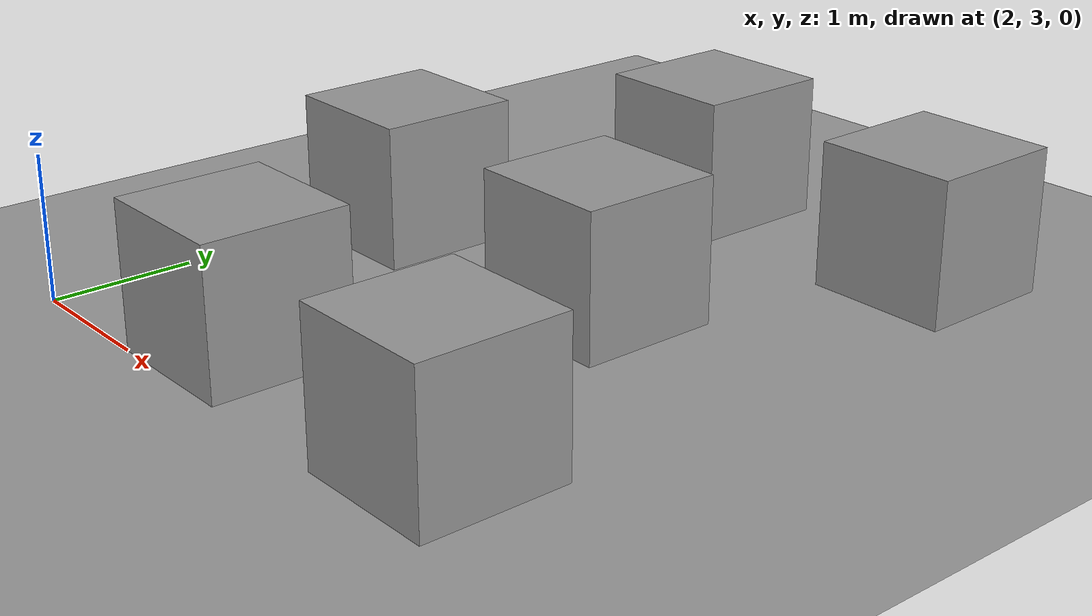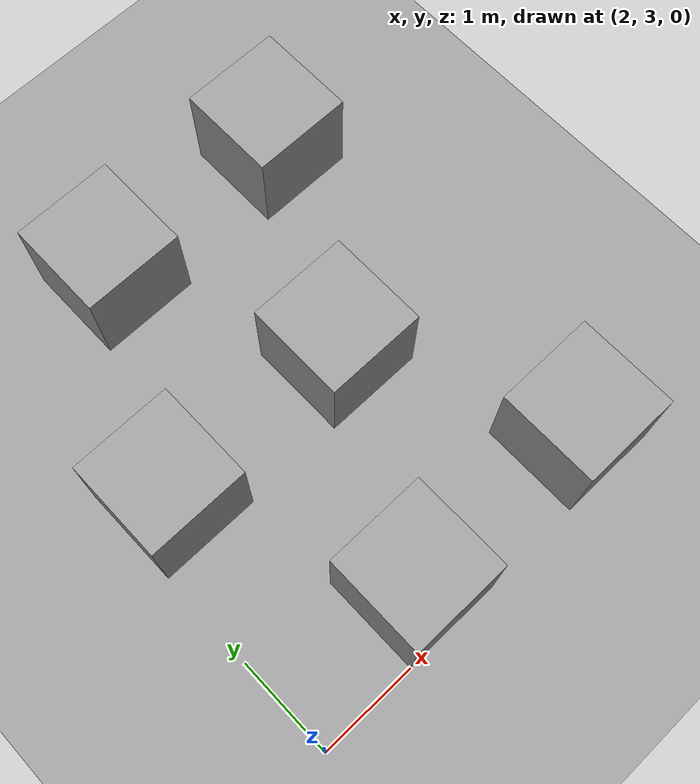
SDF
<sdf version="1.4">
 <world name="default">
  <model name="unit_box">
   <static>true</static>
   <pose>5.5 7.5 0.5 0 -0 0</pose>
   <link name="link">
    <inertial>
     <mass>1</mass>
     <inertia>
      <ixx>0.166667</ixx>
      <ixy>0</ixy>
      <ixz>0</ixz>
      <iyy>0.166667</iyy>
      <iyz>0</iyz>
      <izz>0.166667</izz>
     </inertia>
    </inertial>
    <collision name="collision"><geometry><box><size>1 1 1</size></box></geometry></collision>
    <visual name="visual">
     <geometry><box><size>1 1 1</size></box></geometry>
     <material>
      <script><name>Gazebo/Grey</name><uri>file://media/materials/scripts/gazebo.material</uri></script>
     </material>
    </visual>
   </link>
  </model>
  <model name="unit_box_1">
   <pose>3.5 7.5 0.5 0 -0 0</pose>
   <static>true</static>
   <link name="link">
    <inertial>
     <mass>1</mass>
     <inertia>
      <ixx>0.166667</ixx>
      <ixy>0</ixy>
      <ixz>0</ixz>
      <iyy>0.166667</iyy>
      <iyz>0</iyz>
      <izz>0.166667</izz>
     </inertia>
    </inertial>
    <collision name="collision"><geometry><box><size>1 1 1</size></box></geometry></collision>
    <visual name="visual">
     <geometry><box><size>1 1 1</size></box></geometry>
     <material>
      <script><name>Gazebo/Grey</name><uri>file://media/materials/scripts/gazebo.material</uri></script>
     </material>
    </visual>
   </link>
  </model>
  <model name="unit_box_3">
   <static>true</static>
   <pose>2.5 5.5 0.5 0 -0 0</pose>
   <link name="link">
    <inertial>
     <mass>1</mass>
     <inertia>
      <ixx>0.166667</ixx>
      <ixy>0</ixy>
      <ixz>0</ixz>
      <iyy>0.166667</iyy>
      <iyz>0</iyz>
      <izz>0.166667</izz>
     </inertia>
    </inertial>
    <collision name="collision"><geometry><box><size>1 1 1</size></box></geometry></collision>
    <visual name="visual">
     <geometry><box><size>1 1 1</size></box></geometry>
     <material>
      <script><name>Gazebo/Grey</name><uri>file://media/materials/scripts/gazebo.material</uri></script>
     </material>
    </visual>
   </link>
  </model>
  <model name="unit_box_4">
   <static>true</static>
   <pose>4.5 5.5 0.5 0 -0 0</pose>
   <link name="link">
    <inertial>
     <mass>1</mass>
     <inertia>
      <ixx>0.166667</ixx>
      <ixy>0</ixy>
      <ixz>0</ixz>
      <iyy>0.166667</iyy>
      <iyz>0</iyz>
      <izz>0.166667</izz>
     </inertia>
    </inertial>
    <collision name="collision"><geometry><box><size>1 1 1</size></box></geometry></collision>
    <visual name="visual">
     <geometry><box><size>1 1 1</size></box></geometry>
     <material>
      <script><name>Gazebo/Grey</name><uri>file://media/materials/scripts/gazebo.material</uri></script>
     </material>
    </visual>
   </link>
  </model>
  <model name="unit_box_5">
   <static>true</static>
   <pose>5.5 3.5 0.5 0 -0 0</pose>
   <link name="link">
    <inertial>
     <mass>1</mass>
     <inertia>
      <ixx>0.166667</ixx>
      <ixy>0</ixy>
      <ixz>0</ixz>
      <iyy>0.166667</iyy>
      <iyz>0</iyz>
      <izz>0.166667</izz>
     </inertia>
    </inertial>
    <collision name="collision"><geometry><box><size>1 1 1</size></box></geometry></collision>
    <visual name="visual">
     <geometry><box><size>1 1 1</size></box></geometry>
     <material>
      <script><name>Gazebo/Grey</name><uri>file://media/materials/scripts/gazebo.material</uri></script>
     </material>
    </visual>
   </link>
  </model>
  <model name="unit_box_6">
   <static>true</static>
   <pose>3.5 3.5 0.5 0 -0 0</pose>
   <link name="link">
    <inertial>
     <mass>1</mass>
     <inertia>
      <ixx>0.166667</ixx>
      <ixy>0</ixy>
      <ixz>0</ixz>
      <iyy>0.166667</iyy>
      <iyz>0</iyz>
      <izz>0.166667</izz>
     </inertia>
    </inertial>
    <collision name="collision"><geometry><box><size>1 1 1</size></box></geometry></collision>
    <visual name="visual">
     <geometry><box><size>1 1 1</size></box></geometry>
     <material>
      <script><name>Gazebo/Grey</name><uri>file://media/materials/scripts/gazebo.material</uri></script>
     </material>
    </visual>
   </link>
  </model>
  <light name="sun" type="directional">
   <pose>0 0 10 0 -0 0</pose>
   <diffuse>0.8 0.8 0.8 1</diffuse>
   <specular>0.2 0.2 0.2 1</specular>
   <attenuation>
    <range>1000</range>
    <constant>0.9</constant>
    <linear>0.01</linear>
    <quadratic>0.001</quadratic>
   </attenuation>
   <direction>0.5 0.1 -0.9</direction>
  </light>
  <scene><ambient>0.4 0.4 0.4 1</ambient><background>0.7 0.7 0.7 1</background><shadows>1</shadows></scene>
  <physics type="ode">
   <max_step_size>0.01</max_step_size>
   <real_time_factor>1</real_time_factor>
   <real_time_update_rate>100</real_time_update_rate>
   <gravity>0 0 -9.8</gravity>
  </physics>
  <model name="ground_plane_0">
   <static>1</static>
   <link name="link">
    <collision name="collision">
     <geometry><plane><normal>0 0 1</normal><size>100 100</size></plane></geometry>
     <surface><friction><ode><mu>100</mu><mu2>50</mu2></ode></friction></surface>
    </collision>
    <visual name="visual">
     <cast_shadows>0</cast_shadows>
     <geometry><plane><normal>0 0 1</normal><size>100 100</size></plane></geometry>
     <material>
      <script><uri>file://media/materials/scripts/gazebo.material</uri><name>Gazebo/Grey</name></script>
     </material>
    </visual>
    <velocity_decay><linear>0</linear><angular>0</angular></velocity_decay>
   </link>
   <pose>0.497681 0 0 0 -0 0</pose>
  </model>
 </world>
</sdf>
